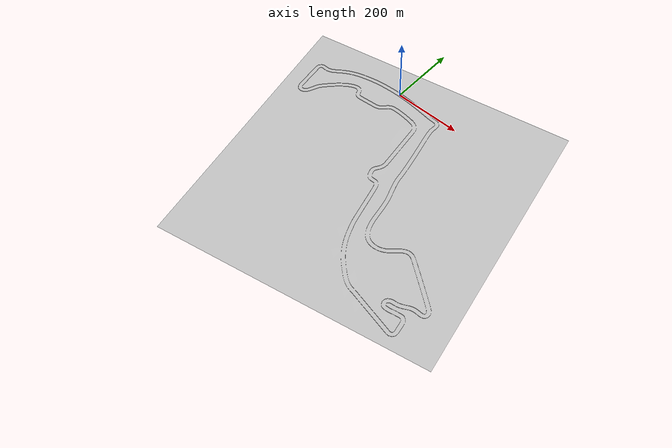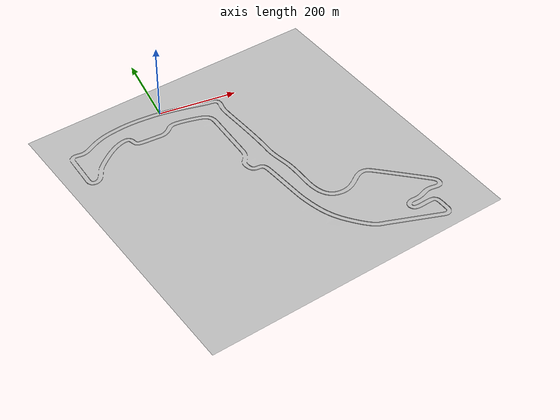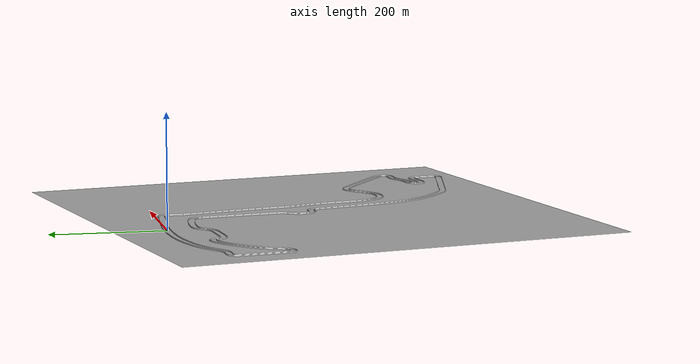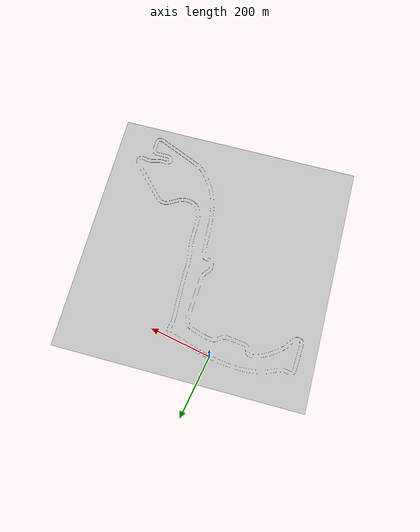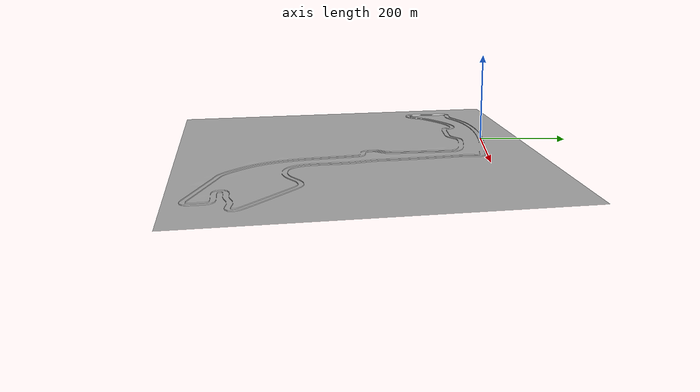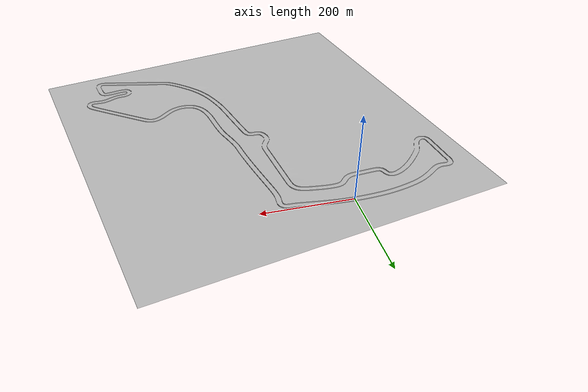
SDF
<?xml version='1.0'?>
<sdf version="1.4">
<model name="monaco">
  <static>true</static>
    <link name="monaco">
    	<pose>130 -286.6 -7.54 0 0 -0.79</pose>
        <collision name="collision">
            <geometry>
               <mesh>
                  <scale>100 100 100</scale>
                  <uri>model://monaco/meshes/CircuitoMonaco.dae</uri>
               </mesh>
            </geometry>
        </collision>
        <visual name="visual">
            <geometry>
               <mesh>
                  <scale>100 100 100</scale>
                  <uri>model://monaco/meshes/CircuitoMonaco.dae</uri>
               </mesh>
            </geometry>
        </visual>
     </link>
</model>
</sdf>
